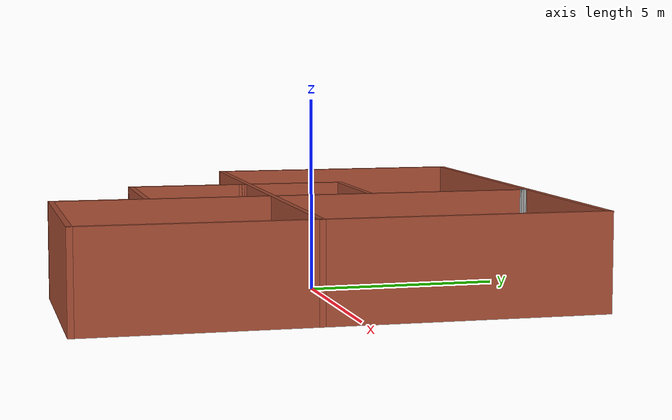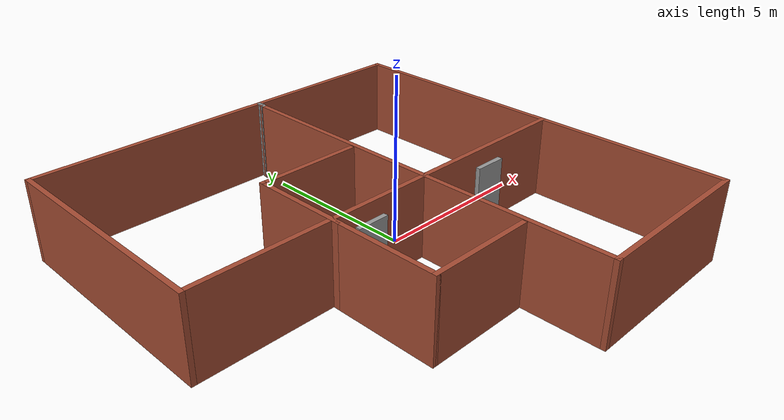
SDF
<?xml version='1.0'?>
<sdf version='1.6'>
  <model name='stairs'>
    <pose frame=''>-1.07085 -0.362863 0 0 -0 0</pose>
    <link name='Door_0'>
      <collision name='Door_0_Collision'>
        <geometry>
          <box>
            <size>1 0.17 2</size>
          </box>
        </geometry>
        <pose frame=''>0 0 1 0 -0 0</pose>
      </collision>
      <visual name='Door_0_Visual'>
        <pose frame=''>0 0 1 0 -0 0</pose>
        <geometry>
          <box>
            <size>1 0.17 2</size>
          </box>
        </geometry>
        <material>
          <script>
            <uri>file://media/materials/scripts/gazebo.material</uri>
            <name>Gazebo/Grey</name>
          </script>
        </material>
      </visual>
      <pose frame=''>3.68967 -0.809541 0 0 -0 3.12459</pose>
    </link>
    <link name='Door_1'>
      <collision name='Door_1_Collision'>
        <geometry>
          <box>
            <size>1 0.17 2</size>
          </box>
        </geometry>
        <pose frame=''>0 0 1 0 -0 0</pose>
      </collision>
      <visual name='Door_1_Visual'>
        <pose frame=''>0 0 1 0 -0 0</pose>
        <geometry>
          <box>
            <size>1 0.17 2</size>
          </box>
        </geometry>
        <material>
          <script>
            <uri>file://media/materials/scripts/gazebo.material</uri>
            <name>Gazebo/Grey</name>
          </script>
        </material>
      </visual>
      <pose frame=''>-1.00584 -0.809541 0 0 0 -3.12545</pose>
    </link>
    <link name='Wall_0'>
      <collision name='Wall_0_Collision'>
        <geometry>
          <box>
            <size>13 0.15 2.5</size>
          </box>
        </geometry>
        <pose frame=''>0 0 1.25 0 -0 0</pose>
      </collision>
      <visual name='Wall_0_Visual'>
        <pose frame=''>0 0 1.25 0 -0 0</pose>
        <geometry>
          <box>
            <size>13 0.15 2.5</size>
          </box>
        </geometry>
        <material>
          <script>
            <uri>file://media/materials/scripts/gazebo.material</uri>
            <name>Gazebo/Bricks</name>
          </script>
          <ambient>1 1 1 1</ambient>
        </material>
        <meta>
          <layer>0</layer>
        </meta>
      </visual>
      <pose frame=''>0 6.425 0 0 -0 0</pose>
    </link>
    <link name='Wall_1'>
      <collision name='Wall_1_Collision'>
        <geometry>
          <box>
            <size>13 0.15 2.5</size>
          </box>
        </geometry>
        <pose frame=''>0 0 1.25 0 -0 0</pose>
      </collision>
      <visual name='Wall_1_Visual'>
        <pose frame=''>0 0 1.25 0 -0 0</pose>
        <geometry>
          <box>
            <size>13 0.15 2.5</size>
          </box>
        </geometry>
        <material>
          <script>
            <uri>file://media/materials/scripts/gazebo.material</uri>
            <name>Gazebo/Bricks</name>
          </script>
          <ambient>1 1 1 1</ambient>
        </material>
        <meta>
          <layer>0</layer>
        </meta>
      </visual>
      <pose frame=''>6.425 0 0 0 -0 -1.5708</pose>
    </link>
    <link name='Wall_11'>
      <collision name='Wall_11_Collision'>
        <geometry>
          <box>
            <size>12.75 0.15 2.5</size>
          </box>
        </geometry>
        <pose frame=''>0 0 1.25 0 -0 0</pose>
      </collision>
      <visual name='Wall_11_Visual'>
        <pose frame=''>0 0 1.25 0 -0 0</pose>
        <geometry>
          <box>
            <size>12.75 0.15 2.5</size>
          </box>
        </geometry>
        <material>
          <script>
            <uri>file://media/materials/scripts/gazebo.material</uri>
            <name>Gazebo/Bricks</name>
          </script>
          <ambient>1 1 1 1</ambient>
        </material>
        <meta>
          <layer>0</layer>
        </meta>
      </visual>
      <pose frame=''>1.075 -0.125 0 0 -0 1.5708</pose>
    </link>
    <link name='Wall_12'>
      <collision name='Wall_12_Collision'>
        <geometry>
          <box>
            <size>0.25 0.15 2.5</size>
          </box>
        </geometry>
        <pose frame=''>0 0 1.25 0 -0 0</pose>
      </collision>
      <visual name='Wall_12_Visual'>
        <pose frame=''>0 0 1.25 0 -0 0</pose>
        <geometry>
          <box>
            <size>0.25 0.15 2.5</size>
          </box>
        </geometry>
        <material>
          <script>
            <uri>file://media/materials/scripts/gazebo.material</uri>
            <name>Gazebo/Grey</name>
          </script>
          <ambient>1 1 1 1</ambient>
        </material>
        <meta>
          <layer>0</layer>
        </meta>
      </visual>
      <pose frame=''>1.08794 6.2233 0 0 -0 1.309</pose>
    </link>
    <link name='Wall_13'>
      <collision name='Wall_13_Collision'>
        <geometry>
          <box>
            <size>0.25 0.15 2.5</size>
          </box>
        </geometry>
        <pose frame=''>0 0 1.25 0 -0 0</pose>
      </collision>
      <visual name='Wall_13_Visual'>
        <pose frame=''>0 0 1.25 0 -0 0</pose>
        <geometry>
          <box>
            <size>0.25 0.15 2.5</size>
          </box>
        </geometry>
        <material>
          <script>
            <uri>file://media/materials/scripts/gazebo.material</uri>
            <name>Gazebo/Grey</name>
          </script>
          <ambient>1 1 1 1</ambient>
        </material>
        <meta>
          <layer>0</layer>
        </meta>
      </visual>
      <pose frame=''>1.10088 6.32159 0 0 -0 1.5708</pose>
    </link>
    <link name='Wall_15'>
      <collision name='Wall_15_Collision'>
        <geometry>
          <box>
            <size>3 0.15 2.5</size>
          </box>
        </geometry>
        <pose frame=''>0 0 1.25 0 -0 0</pose>
      </collision>
      <visual name='Wall_15_Visual'>
        <pose frame=''>0 0 1.25 0 -0 0</pose>
        <geometry>
          <box>
            <size>3 0.15 2.5</size>
          </box>
        </geometry>
        <material>
          <script>
            <uri>file://media/materials/scripts/gazebo.material</uri>
            <name>Gazebo/Bricks</name>
          </script>
          <ambient>1 1 1 1</ambient>
        </material>
        <meta>
          <layer>0</layer>
        </meta>
      </visual>
      <pose frame=''>-2.20355 0.538936 0 0 -0 1.5708</pose>
    </link>
    <link name='Wall_16'>
      <collision name='Wall_16_Collision'>
        <geometry>
          <box>
            <size>3.25 0.15 2.5</size>
          </box>
        </geometry>
        <pose frame=''>0 0 1.25 0 -0 0</pose>
      </collision>
      <visual name='Wall_16_Visual'>
        <pose frame=''>0 0 1.25 0 -0 0</pose>
        <geometry>
          <box>
            <size>3.25 0.15 2.5</size>
          </box>
        </geometry>
        <material>
          <script>
            <uri>file://media/materials/scripts/gazebo.material</uri>
            <name>Gazebo/Bricks</name>
          </script>
          <ambient>1 1 1 1</ambient>
        </material>
        <meta>
          <layer>0</layer>
        </meta>
      </visual>
      <pose frame=''>-0.653548 1.96393 0 0 -0 0</pose>
    </link>
    <link name='Wall_2'>
      <collision name='Wall_2_Collision'>
        <geometry>
          <box>
            <size>5.5 0.15 2.5</size>
          </box>
        </geometry>
        <pose frame=''>0 0 1.25 0 -0 0</pose>
      </collision>
      <visual name='Wall_2_Visual'>
        <pose frame=''>0 0 1.25 0 -0 0</pose>
        <geometry>
          <box>
            <size>5.5 0.15 2.5</size>
          </box>
        </geometry>
        <material>
          <script>
            <uri>file://media/materials/scripts/gazebo.material</uri>
            <name>Gazebo/Bricks</name>
          </script>
          <ambient>1 1 1 1</ambient>
        </material>
        <meta>
          <layer>0</layer>
        </meta>
      </visual>
      <pose frame=''>3.75 -6.425 0 0 -0 3.14159</pose>
    </link>
    <link name='Wall_5'>
      <collision name='Wall_5_Collision'>
        <geometry>
          <box>
            <size>7.25 0.15 2.5</size>
          </box>
        </geometry>
        <pose frame=''>0 0 1.25 0 -0 0</pose>
      </collision>
      <visual name='Wall_5_Visual'>
        <pose frame=''>0 0 1.25 0 -0 0</pose>
        <geometry>
          <box>
            <size>7.25 0.15 2.5</size>
          </box>
        </geometry>
        <material>
          <script>
            <uri>file://media/materials/scripts/gazebo.material</uri>
            <name>Gazebo/Bricks</name>
          </script>
          <ambient>1 1 1 1</ambient>
        </material>
        <meta>
          <layer>0</layer>
        </meta>
      </visual>
      <pose frame=''>-6.425 2.875 0 0 -0 -1.5708</pose>
    </link>
    <link name='Wall_6'>
      <collision name='Wall_6_Collision'>
        <geometry>
          <box>
            <size>13 0.15 2.5</size>
          </box>
        </geometry>
        <pose frame=''>0 0 1.25 0 -0 0</pose>
      </collision>
      <visual name='Wall_6_Visual'>
        <pose frame=''>0 0 1.25 0 -0 0</pose>
        <geometry>
          <box>
            <size>13 0.15 2.5</size>
          </box>
        </geometry>
        <material>
          <script>
            <uri>file://media/materials/scripts/gazebo.material</uri>
            <name>Gazebo/Bricks</name>
          </script>
          <ambient>1 1 1 1</ambient>
        </material>
        <meta>
          <layer>0</layer>
        </meta>
      </visual>
      <pose frame=''>0 -0.675 0 0 -0 0</pose>
    </link>
    <link name='Wall_8'>
      <collision name='Wall_8_Collision'>
        <geometry>
          <box>
            <size>3.25 0.15 2.5</size>
          </box>
        </geometry>
        <pose frame=''>0 0 1.25 0 -0 0</pose>
      </collision>
      <visual name='Wall_8_Visual'>
        <pose frame=''>0 0 1.25 0 -0 0</pose>
        <geometry>
          <box>
            <size>3.25 0.15 2.5</size>
          </box>
        </geometry>
        <material>
          <script>
            <uri>file://media/materials/scripts/gazebo.material</uri>
            <name>Gazebo/Bricks</name>
          </script>
          <ambient>1 1 1 1</ambient>
        </material>
        <meta>
          <layer>0</layer>
        </meta>
      </visual>
      <pose frame=''>-2.20355 -2.43606 0 0 -0 -1.5708</pose>
    </link>
    <link name='Wall_9'>
      <collision name='Wall_9_Collision'>
        <geometry>
          <box>
            <size>3.25 0.15 2.5</size>
          </box>
        </geometry>
        <pose frame=''>0 0 1.25 0 -0 0</pose>
      </collision>
      <visual name='Wall_9_Visual'>
        <pose frame=''>0 0 1.25 0 -0 0</pose>
        <geometry>
          <box>
            <size>3.25 0.15 2.5</size>
          </box>
        </geometry>
        <material>
          <script>
            <uri>file://media/materials/scripts/gazebo.material</uri>
            <name>Gazebo/Bricks</name>
          </script>
          <ambient>1 1 1 1</ambient>
        </material>
        <meta>
          <layer>0</layer>
        </meta>
      </visual>
      <pose frame=''>-0.653548 -3.98606 0 0 -0 0</pose>
    </link>
    <static>1</static>
  </model>
</sdf>
